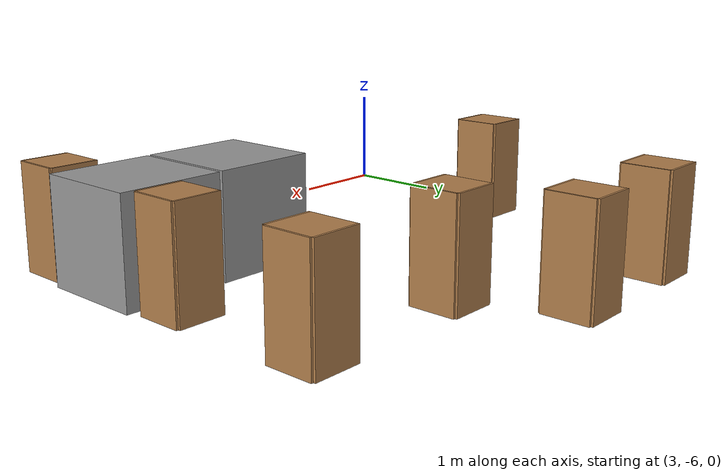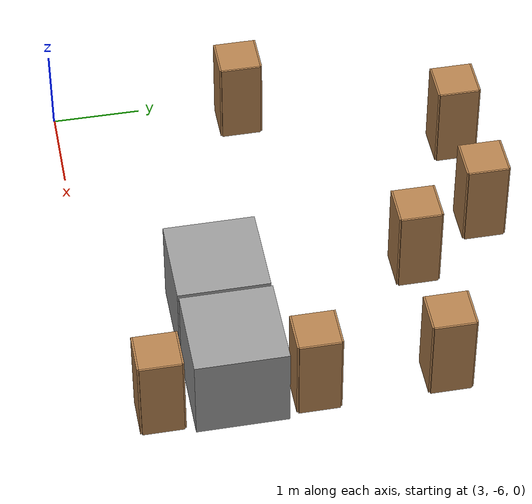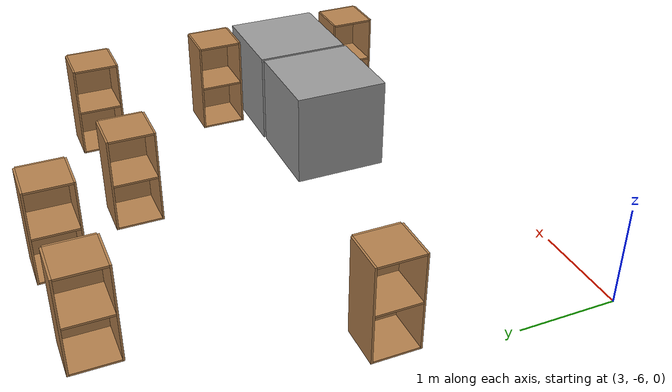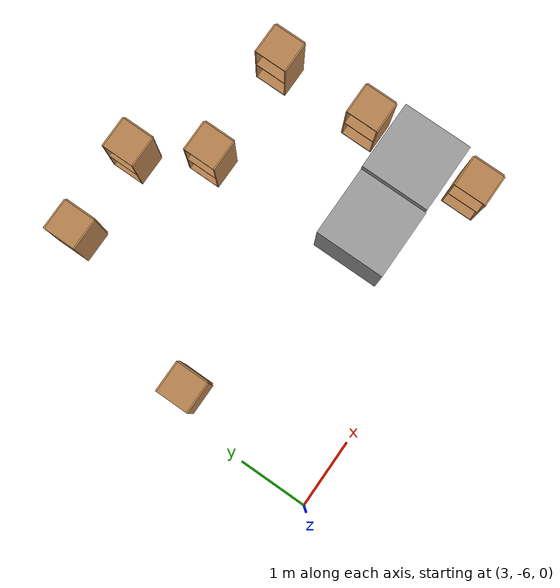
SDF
<sdf version="1.4">
 <world name="default">
  <model name="cabinet">
   <static>1</static>
   <link name="cabinet_bottom_plate">
    <inertial>
     <pose>0 0 -1 0 -0 0</pose>
     <inertia><ixx>2.05</ixx><ixy>0</ixy><ixz>0</ixz><iyy>2.05</iyy><iyz>0</iyz><izz>2.05</izz></inertia>
     <mass>25</mass>
    </inertial>
    <collision name="cabinet_bottom_plate_geom">
     <pose>0 0 0.01 0 -0 0</pose>
     <geometry><box><size>0.45 0.45 0.02</size></box></geometry>
    </collision>
    <visual name="cabinet_bottom_plate_geom_visual">
     <pose>0 0 0.01 0 -0 0</pose>
     <geometry><box><size>0.45 0.45 0.02</size></box></geometry>
     <material>
      <script><uri>file://media/materials/scripts/gazebo.material</uri><name>Gazebo/Wood</name></script>
     </material>
    </visual>
    <collision name="cabinet_bottom_plate_geom_cabinet_back_plate">
     <pose>0.235 0 0.51 0 -0 0</pose>
     <geometry><box><size>0.02 0.45 1.02</size></box></geometry>
    </collision>
    <visual name="cabinet_bottom_plate_geom_cabinet_back_plate_visual">
     <pose>0.235 0 0.51 0 -0 0</pose>
     <geometry><box><size>0.02 0.45 1.02</size></box></geometry>
     <material>
      <script><uri>file://media/materials/scripts/gazebo.material</uri><name>Gazebo/Wood</name></script>
     </material>
    </visual>
    <collision name="cabinet_bottom_plate_geom_cabinet_left_plate">
     <pose>0 0.235 0.51 0 -0 0</pose>
     <geometry><box><size>0.45 0.02 1.02</size></box></geometry>
    </collision>
    <visual name="cabinet_bottom_plate_geom_cabinet_left_plate_visual">
     <pose>0 0.235 0.51 0 -0 0</pose>
     <geometry><box><size>0.45 0.02 1.02</size></box></geometry>
     <material>
      <script><uri>file://media/materials/scripts/gazebo.material</uri><name>Gazebo/Wood</name></script>
     </material>
    </visual>
    <collision name="cabinet_bottom_plate_geom_cabinet_middle_plate">
     <pose>0 0 0.51 0 -0 0</pose>
     <geometry><box><size>0.45 0.45 0.02</size></box></geometry>
    </collision>
    <visual name="cabinet_bottom_plate_geom_cabinet_middle_plate_visual">
     <pose>0 0 0.51 0 -0 0</pose>
     <geometry><box><size>0.45 0.45 0.02</size></box></geometry>
     <material>
      <script><uri>file://media/materials/scripts/gazebo.material</uri><name>Gazebo/Wood</name></script>
     </material>
    </visual>
    <collision name="cabinet_bottom_plate_geom_cabinet_right_plate">
     <pose>0 -0.235 0.51 0 -0 0</pose>
     <geometry><box><size>0.45 0.02 1.02</size></box></geometry>
    </collision>
    <visual name="cabinet_bottom_plate_geom_cabinet_right_plate_visual">
     <pose>0 -0.235 0.51 0 -0 0</pose>
     <geometry><box><size>0.45 0.02 1.02</size></box></geometry>
     <material>
      <script><uri>file://media/materials/scripts/gazebo.material</uri><name>Gazebo/Wood</name></script>
     </material>
    </visual>
    <collision name="cabinet_bottom_plate_geom_cabinet_top_plate">
     <pose>0 0 1.01 0 -0 0</pose>
     <geometry><box><size>0.45 0.45 0.02</size></box></geometry>
    </collision>
    <visual name="cabinet_bottom_plate_geom_cabinet_top_plate_visual">
     <pose>0 0 1.01 0 -0 0</pose>
     <geometry><box><size>0.45 0.45 0.02</size></box></geometry>
     <material>
      <script><uri>file://media/materials/scripts/gazebo.material</uri><name>Gazebo/Wood</name></script>
     </material>
    </visual>
    <velocity_decay><linear>0</linear><angular>0</angular></velocity_decay>
   </link>
   <pose>3.36979 -3.8707 0 0 -0 0</pose>
  </model>
  <model name="cabinet_1">
   <static>1</static>
   <link name="cabinet_bottom_plate">
    <inertial>
     <pose>0 0 -1 0 -0 0</pose>
     <inertia><ixx>2.05</ixx><ixy>0</ixy><ixz>0</ixz><iyy>2.05</iyy><iyz>0</iyz><izz>2.05</izz></inertia>
     <mass>25</mass>
    </inertial>
    <collision name="cabinet_bottom_plate_geom">
     <pose>0 0 0.01 0 -0 0</pose>
     <geometry><box><size>0.45 0.45 0.02</size></box></geometry>
    </collision>
    <visual name="cabinet_bottom_plate_geom_visual">
     <pose>0 0 0.01 0 -0 0</pose>
     <geometry><box><size>0.45 0.45 0.02</size></box></geometry>
     <material>
      <script><uri>file://media/materials/scripts/gazebo.material</uri><name>Gazebo/Wood</name></script>
     </material>
    </visual>
    <collision name="cabinet_bottom_plate_geom_cabinet_back_plate">
     <pose>0.235 0 0.51 0 -0 0</pose>
     <geometry><box><size>0.02 0.45 1.02</size></box></geometry>
    </collision>
    <visual name="cabinet_bottom_plate_geom_cabinet_back_plate_visual">
     <pose>0.235 0 0.51 0 -0 0</pose>
     <geometry><box><size>0.02 0.45 1.02</size></box></geometry>
     <material>
      <script><uri>file://media/materials/scripts/gazebo.material</uri><name>Gazebo/Wood</name></script>
     </material>
    </visual>
    <collision name="cabinet_bottom_plate_geom_cabinet_left_plate">
     <pose>0 0.235 0.51 0 -0 0</pose>
     <geometry><box><size>0.45 0.02 1.02</size></box></geometry>
    </collision>
    <visual name="cabinet_bottom_plate_geom_cabinet_left_plate_visual">
     <pose>0 0.235 0.51 0 -0 0</pose>
     <geometry><box><size>0.45 0.02 1.02</size></box></geometry>
     <material>
      <script><uri>file://media/materials/scripts/gazebo.material</uri><name>Gazebo/Wood</name></script>
     </material>
    </visual>
    <collision name="cabinet_bottom_plate_geom_cabinet_middle_plate">
     <pose>0 0 0.51 0 -0 0</pose>
     <geometry><box><size>0.45 0.45 0.02</size></box></geometry>
    </collision>
    <visual name="cabinet_bottom_plate_geom_cabinet_middle_plate_visual">
     <pose>0 0 0.51 0 -0 0</pose>
     <geometry><box><size>0.45 0.45 0.02</size></box></geometry>
     <material>
      <script><uri>file://media/materials/scripts/gazebo.material</uri><name>Gazebo/Wood</name></script>
     </material>
    </visual>
    <collision name="cabinet_bottom_plate_geom_cabinet_right_plate">
     <pose>0 -0.235 0.51 0 -0 0</pose>
     <geometry><box><size>0.45 0.02 1.02</size></box></geometry>
    </collision>
    <visual name="cabinet_bottom_plate_geom_cabinet_right_plate_visual">
     <pose>0 -0.235 0.51 0 -0 0</pose>
     <geometry><box><size>0.45 0.02 1.02</size></box></geometry>
     <material>
      <script><uri>file://media/materials/scripts/gazebo.material</uri><name>Gazebo/Wood</name></script>
     </material>
    </visual>
    <collision name="cabinet_bottom_plate_geom_cabinet_top_plate">
     <pose>0 0 1.01 0 -0 0</pose>
     <geometry><box><size>0.45 0.45 0.02</size></box></geometry>
    </collision>
    <visual name="cabinet_bottom_plate_geom_cabinet_top_plate_visual">
     <pose>0 0 1.01 0 -0 0</pose>
     <geometry><box><size>0.45 0.45 0.02</size></box></geometry>
     <material>
      <script><uri>file://media/materials/scripts/gazebo.material</uri><name>Gazebo/Wood</name></script>
     </material>
    </visual>
    <velocity_decay><linear>0</linear><angular>0</angular></velocity_decay>
   </link>
   <pose>7.6582 -5.45483 0 0 -0 0</pose>
  </model>
  <model name="cabinet_2">
   <static>1</static>
   <link name="cabinet_bottom_plate">
    <inertial>
     <pose>0 0 -1 0 -0 0</pose>
     <inertia><ixx>2.05</ixx><ixy>0</ixy><ixz>0</ixz><iyy>2.05</iyy><iyz>0</iyz><izz>2.05</izz></inertia>
     <mass>25</mass>
    </inertial>
    <collision name="cabinet_bottom_plate_geom">
     <pose>0 0 0.01 0 -0 0</pose>
     <geometry><box><size>0.45 0.45 0.02</size></box></geometry>
    </collision>
    <visual name="cabinet_bottom_plate_geom_visual">
     <pose>0 0 0.01 0 -0 0</pose>
     <geometry><box><size>0.45 0.45 0.02</size></box></geometry>
     <material>
      <script><uri>file://media/materials/scripts/gazebo.material</uri><name>Gazebo/Wood</name></script>
     </material>
    </visual>
    <collision name="cabinet_bottom_plate_geom_cabinet_back_plate">
     <pose>0.235 0 0.51 0 -0 0</pose>
     <geometry><box><size>0.02 0.45 1.02</size></box></geometry>
    </collision>
    <visual name="cabinet_bottom_plate_geom_cabinet_back_plate_visual">
     <pose>0.235 0 0.51 0 -0 0</pose>
     <geometry><box><size>0.02 0.45 1.02</size></box></geometry>
     <material>
      <script><uri>file://media/materials/scripts/gazebo.material</uri><name>Gazebo/Wood</name></script>
     </material>
    </visual>
    <collision name="cabinet_bottom_plate_geom_cabinet_left_plate">
     <pose>0 0.235 0.51 0 -0 0</pose>
     <geometry><box><size>0.45 0.02 1.02</size></box></geometry>
    </collision>
    <visual name="cabinet_bottom_plate_geom_cabinet_left_plate_visual">
     <pose>0 0.235 0.51 0 -0 0</pose>
     <geometry><box><size>0.45 0.02 1.02</size></box></geometry>
     <material>
      <script><uri>file://media/materials/scripts/gazebo.material</uri><name>Gazebo/Wood</name></script>
     </material>
    </visual>
    <collision name="cabinet_bottom_plate_geom_cabinet_middle_plate">
     <pose>0 0 0.51 0 -0 0</pose>
     <geometry><box><size>0.45 0.45 0.02</size></box></geometry>
    </collision>
    <visual name="cabinet_bottom_plate_geom_cabinet_middle_plate_visual">
     <pose>0 0 0.51 0 -0 0</pose>
     <geometry><box><size>0.45 0.45 0.02</size></box></geometry>
     <material>
      <script><uri>file://media/materials/scripts/gazebo.material</uri><name>Gazebo/Wood</name></script>
     </material>
    </visual>
    <collision name="cabinet_bottom_plate_geom_cabinet_right_plate">
     <pose>0 -0.235 0.51 0 -0 0</pose>
     <geometry><box><size>0.45 0.02 1.02</size></box></geometry>
    </collision>
    <visual name="cabinet_bottom_plate_geom_cabinet_right_plate_visual">
     <pose>0 -0.235 0.51 0 -0 0</pose>
     <geometry><box><size>0.45 0.02 1.02</size></box></geometry>
     <material>
      <script><uri>file://media/materials/scripts/gazebo.material</uri><name>Gazebo/Wood</name></script>
     </material>
    </visual>
    <collision name="cabinet_bottom_plate_geom_cabinet_top_plate">
     <pose>0 0 1.01 0 -0 0</pose>
     <geometry><box><size>0.45 0.45 0.02</size></box></geometry>
    </collision>
    <visual name="cabinet_bottom_plate_geom_cabinet_top_plate_visual">
     <pose>0 0 1.01 0 -0 0</pose>
     <geometry><box><size>0.45 0.45 0.02</size></box></geometry>
     <material>
      <script><uri>file://media/materials/scripts/gazebo.material</uri><name>Gazebo/Wood</name></script>
     </material>
    </visual>
    <velocity_decay><linear>0</linear><angular>0</angular></velocity_decay>
   </link>
   <pose>7.66392 -3.79156 0 0 -0 0</pose>
  </model>
  <model name="cabinet_4">
   <static>1</static>
   <link name="cabinet_bottom_plate">
    <inertial>
     <pose>0 0 -1 0 -0 0</pose>
     <inertia><ixx>2.05</ixx><ixy>0</ixy><ixz>0</ixz><iyy>2.05</iyy><iyz>0</iyz><izz>2.05</izz></inertia>
     <mass>25</mass>
    </inertial>
    <collision name="cabinet_bottom_plate_geom">
     <pose>0 0 0.01 0 -0 0</pose>
     <geometry><box><size>0.45 0.45 0.02</size></box></geometry>
    </collision>
    <visual name="cabinet_bottom_plate_geom_visual">
     <pose>0 0 0.01 0 -0 0</pose>
     <geometry><box><size>0.45 0.45 0.02</size></box></geometry>
     <material>
      <script><uri>file://media/materials/scripts/gazebo.material</uri><name>Gazebo/Wood</name></script>
     </material>
    </visual>
    <collision name="cabinet_bottom_plate_geom_cabinet_back_plate">
     <pose>0.235 0 0.51 0 -0 0</pose>
     <geometry><box><size>0.02 0.45 1.02</size></box></geometry>
    </collision>
    <visual name="cabinet_bottom_plate_geom_cabinet_back_plate_visual">
     <pose>0.235 0 0.51 0 -0 0</pose>
     <geometry><box><size>0.02 0.45 1.02</size></box></geometry>
     <material>
      <script><uri>file://media/materials/scripts/gazebo.material</uri><name>Gazebo/Wood</name></script>
     </material>
    </visual>
    <collision name="cabinet_bottom_plate_geom_cabinet_left_plate">
     <pose>0 0.235 0.51 0 -0 0</pose>
     <geometry><box><size>0.45 0.02 1.02</size></box></geometry>
    </collision>
    <visual name="cabinet_bottom_plate_geom_cabinet_left_plate_visual">
     <pose>0 0.235 0.51 0 -0 0</pose>
     <geometry><box><size>0.45 0.02 1.02</size></box></geometry>
     <material>
      <script><uri>file://media/materials/scripts/gazebo.material</uri><name>Gazebo/Wood</name></script>
     </material>
    </visual>
    <collision name="cabinet_bottom_plate_geom_cabinet_middle_plate">
     <pose>0 0 0.51 0 -0 0</pose>
     <geometry><box><size>0.45 0.45 0.02</size></box></geometry>
    </collision>
    <visual name="cabinet_bottom_plate_geom_cabinet_middle_plate_visual">
     <pose>0 0 0.51 0 -0 0</pose>
     <geometry><box><size>0.45 0.45 0.02</size></box></geometry>
     <material>
      <script><uri>file://media/materials/scripts/gazebo.material</uri><name>Gazebo/Wood</name></script>
     </material>
    </visual>
    <collision name="cabinet_bottom_plate_geom_cabinet_right_plate">
     <pose>0 -0.235 0.51 0 -0 0</pose>
     <geometry><box><size>0.45 0.02 1.02</size></box></geometry>
    </collision>
    <visual name="cabinet_bottom_plate_geom_cabinet_right_plate_visual">
     <pose>0 -0.235 0.51 0 -0 0</pose>
     <geometry><box><size>0.45 0.02 1.02</size></box></geometry>
     <material>
      <script><uri>file://media/materials/scripts/gazebo.material</uri><name>Gazebo/Wood</name></script>
     </material>
    </visual>
    <collision name="cabinet_bottom_plate_geom_cabinet_top_plate">
     <pose>0 0 1.01 0 -0 0</pose>
     <geometry><box><size>0.45 0.45 0.02</size></box></geometry>
    </collision>
    <visual name="cabinet_bottom_plate_geom_cabinet_top_plate_visual">
     <pose>0 0 1.01 0 -0 0</pose>
     <geometry><box><size>0.45 0.45 0.02</size></box></geometry>
     <material>
      <script><uri>file://media/materials/scripts/gazebo.material</uri><name>Gazebo/Wood</name></script>
     </material>
    </visual>
    <velocity_decay><linear>0</linear><angular>0</angular></velocity_decay>
   </link>
   <pose>4.21741 -1.50744 0 0 -0 0</pose>
  </model>
  <model name="cabinet_7">
   <static>1</static>
   <link name="cabinet_bottom_plate">
    <inertial>
     <pose>0 0 -1 0 -0 0</pose>
     <inertia><ixx>2.05</ixx><ixy>0</ixy><ixz>0</ixz><iyy>2.05</iyy><iyz>0</iyz><izz>2.05</izz></inertia>
     <mass>25</mass>
    </inertial>
    <collision name="cabinet_bottom_plate_geom">
     <pose>0 0 0.01 0 -0 0</pose>
     <geometry><box><size>0.45 0.45 0.02</size></box></geometry>
    </collision>
    <visual name="cabinet_bottom_plate_geom_visual">
     <pose>0 0 0.01 0 -0 0</pose>
     <geometry><box><size>0.45 0.45 0.02</size></box></geometry>
     <material>
      <script><uri>file://media/materials/scripts/gazebo.material</uri><name>Gazebo/Wood</name></script>
     </material>
    </visual>
    <collision name="cabinet_bottom_plate_geom_cabinet_back_plate">
     <pose>0.235 0 0.51 0 -0 0</pose>
     <geometry><box><size>0.02 0.45 1.02</size></box></geometry>
    </collision>
    <visual name="cabinet_bottom_plate_geom_cabinet_back_plate_visual">
     <pose>0.235 0 0.51 0 -0 0</pose>
     <geometry><box><size>0.02 0.45 1.02</size></box></geometry>
     <material>
      <script><uri>file://media/materials/scripts/gazebo.material</uri><name>Gazebo/Wood</name></script>
     </material>
    </visual>
    <collision name="cabinet_bottom_plate_geom_cabinet_left_plate">
     <pose>0 0.235 0.51 0 -0 0</pose>
     <geometry><box><size>0.45 0.02 1.02</size></box></geometry>
    </collision>
    <visual name="cabinet_bottom_plate_geom_cabinet_left_plate_visual">
     <pose>0 0.235 0.51 0 -0 0</pose>
     <geometry><box><size>0.45 0.02 1.02</size></box></geometry>
     <material>
      <script><uri>file://media/materials/scripts/gazebo.material</uri><name>Gazebo/Wood</name></script>
     </material>
    </visual>
    <collision name="cabinet_bottom_plate_geom_cabinet_middle_plate">
     <pose>0 0 0.51 0 -0 0</pose>
     <geometry><box><size>0.45 0.45 0.02</size></box></geometry>
    </collision>
    <visual name="cabinet_bottom_plate_geom_cabinet_middle_plate_visual">
     <pose>0 0 0.51 0 -0 0</pose>
     <geometry><box><size>0.45 0.45 0.02</size></box></geometry>
     <material>
      <script><uri>file://media/materials/scripts/gazebo.material</uri><name>Gazebo/Wood</name></script>
     </material>
    </visual>
    <collision name="cabinet_bottom_plate_geom_cabinet_right_plate">
     <pose>0 -0.235 0.51 0 -0 0</pose>
     <geometry><box><size>0.45 0.02 1.02</size></box></geometry>
    </collision>
    <visual name="cabinet_bottom_plate_geom_cabinet_right_plate_visual">
     <pose>0 -0.235 0.51 0 -0 0</pose>
     <geometry><box><size>0.45 0.02 1.02</size></box></geometry>
     <material>
      <script><uri>file://media/materials/scripts/gazebo.material</uri><name>Gazebo/Wood</name></script>
     </material>
    </visual>
    <collision name="cabinet_bottom_plate_geom_cabinet_top_plate">
     <pose>0 0 1.01 0 -0 0</pose>
     <geometry><box><size>0.45 0.45 0.02</size></box></geometry>
    </collision>
    <visual name="cabinet_bottom_plate_geom_cabinet_top_plate_visual">
     <pose>0 0 1.01 0 -0 0</pose>
     <geometry><box><size>0.45 0.45 0.02</size></box></geometry>
     <material>
      <script><uri>file://media/materials/scripts/gazebo.material</uri><name>Gazebo/Wood</name></script>
     </material>
    </visual>
    <velocity_decay><linear>0</linear><angular>0</angular></velocity_decay>
   </link>
   <pose>5.50358 -1.48365 0 0 -0 0</pose>
  </model>
  <model name="cabinet_8">
   <static>1</static>
   <link name="cabinet_bottom_plate">
    <inertial>
     <pose>0 0 -1 0 -0 0</pose>
     <inertia><ixx>2.05</ixx><ixy>0</ixy><ixz>0</ixz><iyy>2.05</iyy><iyz>0</iyz><izz>2.05</izz></inertia>
     <mass>25</mass>
    </inertial>
    <collision name="cabinet_bottom_plate_geom">
     <pose>0 0 0.01 0 -0 0</pose>
     <geometry><box><size>0.45 0.45 0.02</size></box></geometry>
    </collision>
    <visual name="cabinet_bottom_plate_geom_visual">
     <pose>0 0 0.01 0 -0 0</pose>
     <geometry><box><size>0.45 0.45 0.02</size></box></geometry>
     <material>
      <script><uri>file://media/materials/scripts/gazebo.material</uri><name>Gazebo/Wood</name></script>
     </material>
    </visual>
    <collision name="cabinet_bottom_plate_geom_cabinet_back_plate">
     <pose>0.235 0 0.51 0 -0 0</pose>
     <geometry><box><size>0.02 0.45 1.02</size></box></geometry>
    </collision>
    <visual name="cabinet_bottom_plate_geom_cabinet_back_plate_visual">
     <pose>0.235 0 0.51 0 -0 0</pose>
     <geometry><box><size>0.02 0.45 1.02</size></box></geometry>
     <material>
      <script><uri>file://media/materials/scripts/gazebo.material</uri><name>Gazebo/Wood</name></script>
     </material>
    </visual>
    <collision name="cabinet_bottom_plate_geom_cabinet_left_plate">
     <pose>0 0.235 0.51 0 -0 0</pose>
     <geometry><box><size>0.45 0.02 1.02</size></box></geometry>
    </collision>
    <visual name="cabinet_bottom_plate_geom_cabinet_left_plate_visual">
     <pose>0 0.235 0.51 0 -0 0</pose>
     <geometry><box><size>0.45 0.02 1.02</size></box></geometry>
     <material>
      <script><uri>file://media/materials/scripts/gazebo.material</uri><name>Gazebo/Wood</name></script>
     </material>
    </visual>
    <collision name="cabinet_bottom_plate_geom_cabinet_middle_plate">
     <pose>0 0 0.51 0 -0 0</pose>
     <geometry><box><size>0.45 0.45 0.02</size></box></geometry>
    </collision>
    <visual name="cabinet_bottom_plate_geom_cabinet_middle_plate_visual">
     <pose>0 0 0.51 0 -0 0</pose>
     <geometry><box><size>0.45 0.45 0.02</size></box></geometry>
     <material>
      <script><uri>file://media/materials/scripts/gazebo.material</uri><name>Gazebo/Wood</name></script>
     </material>
    </visual>
    <collision name="cabinet_bottom_plate_geom_cabinet_right_plate">
     <pose>0 -0.235 0.51 0 -0 0</pose>
     <geometry><box><size>0.45 0.02 1.02</size></box></geometry>
    </collision>
    <visual name="cabinet_bottom_plate_geom_cabinet_right_plate_visual">
     <pose>0 -0.235 0.51 0 -0 0</pose>
     <geometry><box><size>0.45 0.02 1.02</size></box></geometry>
     <material>
      <script><uri>file://media/materials/scripts/gazebo.material</uri><name>Gazebo/Wood</name></script>
     </material>
    </visual>
    <collision name="cabinet_bottom_plate_geom_cabinet_top_plate">
     <pose>0 0 1.01 0 -0 0</pose>
     <geometry><box><size>0.45 0.45 0.02</size></box></geometry>
    </collision>
    <visual name="cabinet_bottom_plate_geom_cabinet_top_plate_visual">
     <pose>0 0 1.01 0 -0 0</pose>
     <geometry><box><size>0.45 0.45 0.02</size></box></geometry>
     <material>
      <script><uri>file://media/materials/scripts/gazebo.material</uri><name>Gazebo/Wood</name></script>
     </material>
    </visual>
    <velocity_decay><linear>0</linear><angular>0</angular></velocity_decay>
   </link>
   <pose>6.0617 -2.36409 0 0 -0 0</pose>
  </model>
  <model name="cabinet_9">
   <static>1</static>
   <link name="cabinet_bottom_plate">
    <inertial>
     <pose>0 0 -1 0 -0 0</pose>
     <inertia><ixx>2.05</ixx><ixy>0</ixy><ixz>0</ixz><iyy>2.05</iyy><iyz>0</iyz><izz>2.05</izz></inertia>
     <mass>25</mass>
    </inertial>
    <collision name="cabinet_bottom_plate_geom">
     <pose>0 0 0.01 0 -0 0</pose>
     <geometry><box><size>0.45 0.45 0.02</size></box></geometry>
    </collision>
    <visual name="cabinet_bottom_plate_geom_visual">
     <pose>0 0 0.01 0 -0 0</pose>
     <geometry><box><size>0.45 0.45 0.02</size></box></geometry>
     <material>
      <script><uri>file://media/materials/scripts/gazebo.material</uri><name>Gazebo/Wood</name></script>
     </material>
    </visual>
    <collision name="cabinet_bottom_plate_geom_cabinet_back_plate">
     <pose>0.235 0 0.51 0 -0 0</pose>
     <geometry><box><size>0.02 0.45 1.02</size></box></geometry>
    </collision>
    <visual name="cabinet_bottom_plate_geom_cabinet_back_plate_visual">
     <pose>0.235 0 0.51 0 -0 0</pose>
     <geometry><box><size>0.02 0.45 1.02</size></box></geometry>
     <material>
      <script><uri>file://media/materials/scripts/gazebo.material</uri><name>Gazebo/Wood</name></script>
     </material>
    </visual>
    <collision name="cabinet_bottom_plate_geom_cabinet_left_plate">
     <pose>0 0.235 0.51 0 -0 0</pose>
     <geometry><box><size>0.45 0.02 1.02</size></box></geometry>
    </collision>
    <visual name="cabinet_bottom_plate_geom_cabinet_left_plate_visual">
     <pose>0 0.235 0.51 0 -0 0</pose>
     <geometry><box><size>0.45 0.02 1.02</size></box></geometry>
     <material>
      <script><uri>file://media/materials/scripts/gazebo.material</uri><name>Gazebo/Wood</name></script>
     </material>
    </visual>
    <collision name="cabinet_bottom_plate_geom_cabinet_middle_plate">
     <pose>0 0 0.51 0 -0 0</pose>
     <geometry><box><size>0.45 0.45 0.02</size></box></geometry>
    </collision>
    <visual name="cabinet_bottom_plate_geom_cabinet_middle_plate_visual">
     <pose>0 0 0.51 0 -0 0</pose>
     <geometry><box><size>0.45 0.45 0.02</size></box></geometry>
     <material>
      <script><uri>file://media/materials/scripts/gazebo.material</uri><name>Gazebo/Wood</name></script>
     </material>
    </visual>
    <collision name="cabinet_bottom_plate_geom_cabinet_right_plate">
     <pose>0 -0.235 0.51 0 -0 0</pose>
     <geometry><box><size>0.45 0.02 1.02</size></box></geometry>
    </collision>
    <visual name="cabinet_bottom_plate_geom_cabinet_right_plate_visual">
     <pose>0 -0.235 0.51 0 -0 0</pose>
     <geometry><box><size>0.45 0.02 1.02</size></box></geometry>
     <material>
      <script><uri>file://media/materials/scripts/gazebo.material</uri><name>Gazebo/Wood</name></script>
     </material>
    </visual>
    <collision name="cabinet_bottom_plate_geom_cabinet_top_plate">
     <pose>0 0 1.01 0 -0 0</pose>
     <geometry><box><size>0.45 0.45 0.02</size></box></geometry>
    </collision>
    <visual name="cabinet_bottom_plate_geom_cabinet_top_plate_visual">
     <pose>0 0 1.01 0 -0 0</pose>
     <geometry><box><size>0.45 0.45 0.02</size></box></geometry>
     <material>
      <script><uri>file://media/materials/scripts/gazebo.material</uri><name>Gazebo/Wood</name></script>
     </material>
    </visual>
    <velocity_decay><linear>0</linear><angular>0</angular></velocity_decay>
   </link>
   <pose>7.65012 -2.36612 0 0 -0 0</pose>
  </model>
  <model name="unit_box_21">
   <pose>6.42945 -4.63164 0.5 0 -0 0</pose>
   <link name="link">
    <inertial>
     <mass>1</mass>
     <inertia><ixx>1</ixx><ixy>0</ixy><ixz>0</ixz><iyy>1</iyy><iyz>0</iyz><izz>1</izz></inertia>
    </inertial>
    <collision name="collision"><geometry><box><size>1 1 1</size></box></geometry></collision>
    <visual name="visual">
     <geometry><box><size>1 1 1</size></box></geometry>
     <material>
      <script><uri>file://media/materials/scripts/gazebo.material</uri><name>Gazebo/Grey</name></script>
     </material>
    </visual>
    <velocity_decay><linear>0</linear><angular>0</angular></velocity_decay>
   </link>
   <static>0</static>
  </model>
  <model name="unit_box_22">
   <pose>7.46498 -4.62077 0.5 0 -0 2e-06</pose>
   <link name="link">
    <inertial>
     <mass>1</mass>
     <inertia><ixx>1</ixx><ixy>0</ixy><ixz>0</ixz><iyy>1</iyy><iyz>0</iyz><izz>1</izz></inertia>
    </inertial>
    <collision name="collision"><geometry><box><size>1 1 1</size></box></geometry></collision>
    <visual name="visual">
     <geometry><box><size>1 1 1</size></box></geometry>
     <material>
      <script><uri>file://media/materials/scripts/gazebo.material</uri><name>Gazebo/Grey</name></script>
     </material>
    </visual>
    <velocity_decay><linear>0</linear><angular>0</angular></velocity_decay>
   </link>
   <static>0</static>
  </model>
 </world>
</sdf>
